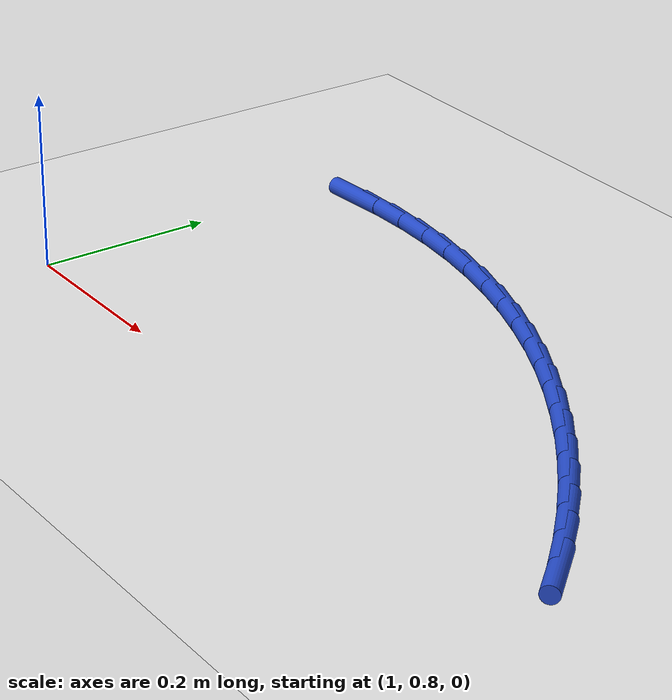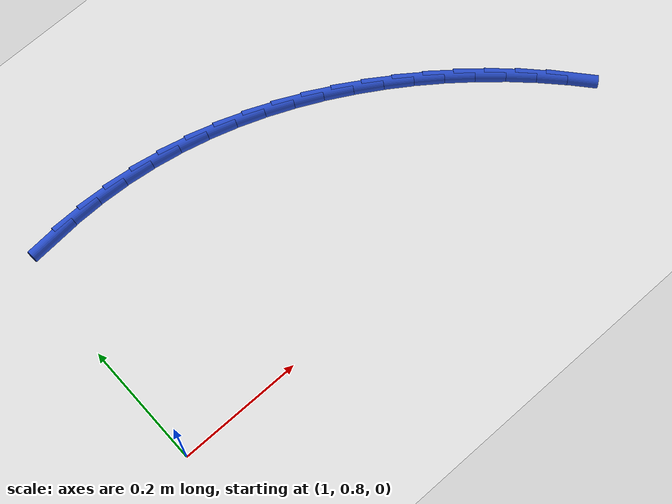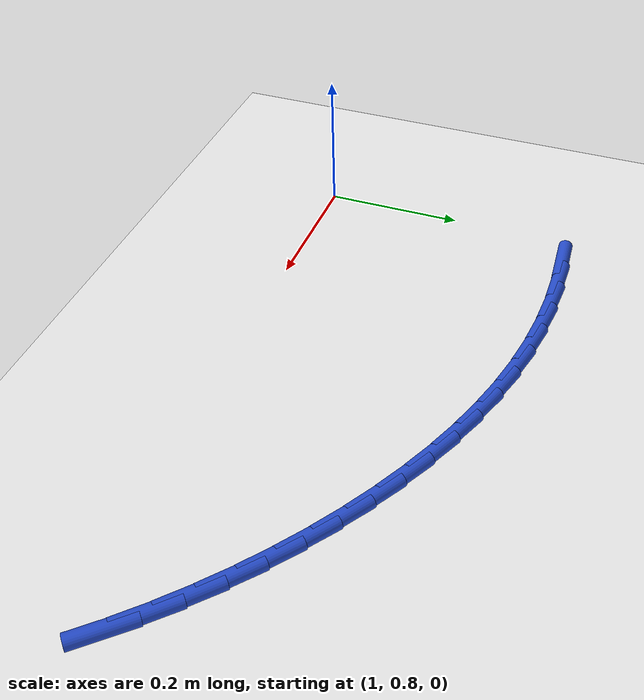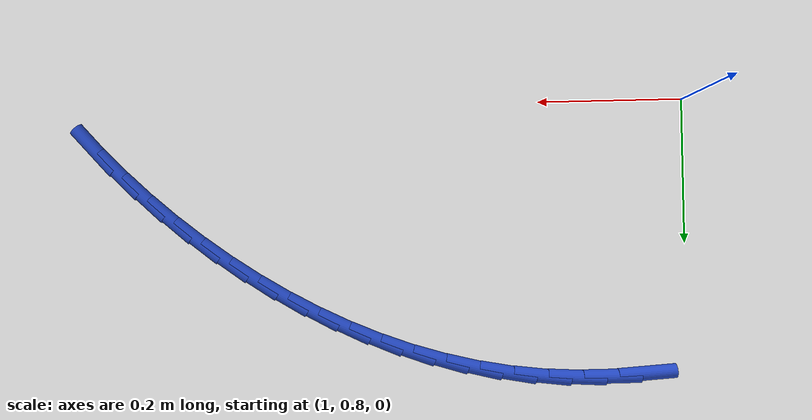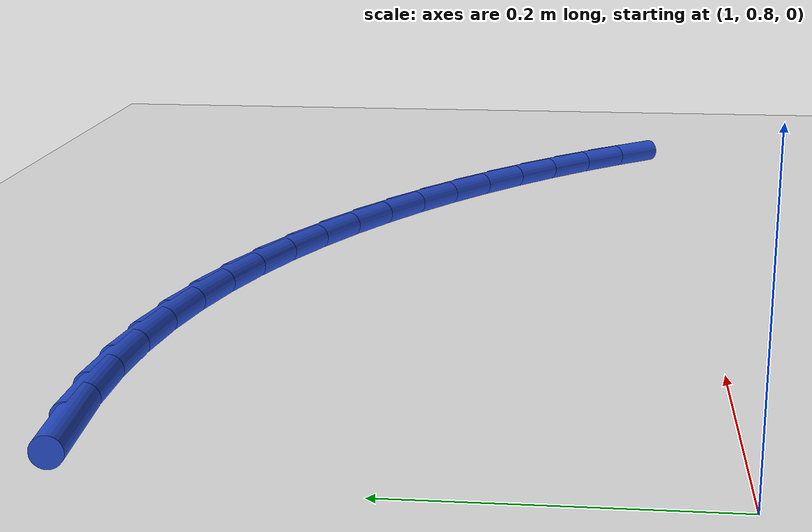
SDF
<sdf version="1.6">
 <world name="default">
  <model name="ground_plane">
   <static>1</static>
   <link name="link">
    <collision name="collision">
     <geometry><plane><normal>0 0 1</normal><size>100 100</size></plane></geometry>
     <surface><friction><ode><mu>100</mu><mu2>50</mu2></ode></friction></surface>
    </collision>
    <visual name="visual">
     <cast_shadows>0</cast_shadows>
     <geometry><plane><normal>0 0 1</normal><size>100 100</size></plane></geometry>
     <material>
      <script><uri>file://media/materials/scripts/gazebo.material</uri><name>Gazebo/WhiteGlow</name></script>
     </material>
    </visual>
   </link>
  </model>
  <model name="line">
   <link name="link_36">
    <pose>1.0584395249842964 1.1781561820800983 0.01 0 1.57 0.06575612400365066</pose>
    <collision name="collision">
     <geometry><cylinder><radius>0.01</radius><length>0.08</length></cylinder></geometry>
    </collision>
    <visual name="visual">
     <material>
      <script><name>Gazebo/Blue</name><uri>file://media/materials/scripts/gazebo.material</uri></script>
     </material>
     <geometry><cylinder><radius>0.01</radius><length>0.08</length></cylinder></geometry>
    </visual>
   </link>
   <link name="link_37">
    <pose>1.1070592692601389 1.1813578438652597 0.01 0 1.57 0.003363680055081965</pose>
    <collision name="collision">
     <geometry><cylinder><radius>0.01</radius><length>0.08</length></cylinder></geometry>
    </collision>
    <visual name="visual">
     <material>
      <script><name>Gazebo/Blue</name><uri>file://media/materials/scripts/gazebo.material</uri></script>
     </material>
     <geometry><cylinder><radius>0.01</radius><length>0.08</length></cylinder></geometry>
    </visual>
   </link>
   <link name="link_38">
    <pose>1.1555762529429277 1.1815210400910927 0.01 0 1.57 -0.05898399173584973</pose>
    <collision name="collision">
     <geometry><cylinder><radius>0.01</radius><length>0.08</length></cylinder></geometry>
    </collision>
    <visual name="visual">
     <material>
      <script><name>Gazebo/Blue</name><uri>file://media/materials/scripts/gazebo.material</uri></script>
     </material>
     <geometry><cylinder><radius>0.01</radius><length>0.08</length></cylinder></geometry>
    </visual>
   </link>
   <link name="link_39">
    <pose>1.2036209507515252 1.178683881005139 0.01 0 1.57 -0.12158685568217643</pose>
    <collision name="collision">
     <geometry><cylinder><radius>0.01</radius><length>0.08</length></cylinder></geometry>
    </collision>
    <visual name="visual">
     <material>
      <script><name>Gazebo/Blue</name><uri>file://media/materials/scripts/gazebo.material</uri></script>
     </material>
     <geometry><cylinder><radius>0.01</radius><length>0.08</length></cylinder></geometry>
    </visual>
   </link>
   <link name="link_40">
    <pose>1.2509033058232113 1.172906470169706 0.01 0 1.57 -0.18293787763764124</pose>
    <collision name="collision">
     <geometry><cylinder><radius>0.01</radius><length>0.08</length></cylinder></geometry>
    </collision>
    <visual name="visual">
     <material>
      <script><name>Gazebo/Blue</name><uri>file://media/materials/scripts/gazebo.material</uri></script>
     </material>
     <geometry><cylinder><radius>0.01</radius><length>0.08</length></cylinder></geometry>
    </visual>
   </link>
   <link name="link_41">
    <pose>1.2973600558809046 1.164311677775767 0.01 0 1.57 -0.2424214555079705</pose>
    <collision name="collision">
     <geometry><cylinder><radius>0.01</radius><length>0.08</length></cylinder></geometry>
    </collision>
    <visual name="visual">
     <material>
      <script><name>Gazebo/Blue</name><uri>file://media/materials/scripts/gazebo.material</uri></script>
     </material>
     <geometry><cylinder><radius>0.01</radius><length>0.08</length></cylinder></geometry>
    </visual>
   </link>
   <link name="link_42">
    <pose>1.3429681334409307 1.1530334981408448 0.01 0 1.57 -0.2997756070706618</pose>
    <collision name="collision">
     <geometry><cylinder><radius>0.01</radius><length>0.08</length></cylinder></geometry>
    </collision>
    <visual name="visual">
     <material>
      <script><name>Gazebo/Blue</name><uri>file://media/materials/scripts/gazebo.material</uri></script>
     </material>
     <geometry><cylinder><radius>0.01</radius><length>0.08</length></cylinder></geometry>
    </visual>
   </link>
   <link name="link_43">
    <pose>1.387704471019614 1.1392059255824643 0.01 0 1.57 -0.35481330731606464</pose>
    <collision name="collision">
     <geometry><cylinder><radius>0.01</radius><length>0.08</length></cylinder></geometry>
    </collision>
    <visual name="visual">
     <material>
      <script><name>Gazebo/Blue</name><uri>file://media/materials/scripts/gazebo.material</uri></script>
     </material>
     <geometry><cylinder><radius>0.01</radius><length>0.08</length></cylinder></geometry>
    </visual>
   </link>
   <link name="link_44">
    <pose>1.431546001133279 1.1229629544181488 0.01 0 1.57 -0.4074186484710152</pose>
    <collision name="collision">
     <geometry><cylinder><radius>0.01</radius><length>0.08</length></cylinder></geometry>
    </collision>
    <visual name="visual">
     <material>
      <script><name>Gazebo/Blue</name><uri>file://media/materials/scripts/gazebo.material</uri></script>
     </material>
     <geometry><cylinder><radius>0.01</radius><length>0.08</length></cylinder></geometry>
    </visual>
   </link>
   <link name="link_45">
    <pose>1.4744696562982509 1.1044385789654223 0.01 0 1.57 -0.4575395148401608</pose>
    <collision name="collision">
     <geometry><cylinder><radius>0.01</radius><length>0.08</length></cylinder></geometry>
    </collision>
    <visual name="visual">
     <material>
      <script><name>Gazebo/Blue</name><uri>file://media/materials/scripts/gazebo.material</uri></script>
     </material>
     <geometry><cylinder><radius>0.01</radius><length>0.08</length></cylinder></geometry>
    </visual>
   </link>
   <link name="link_46">
    <pose>1.5164523690308542 1.0837667935418096 0.01 0 1.57 -0.5051782513102805</pose>
    <collision name="collision">
     <geometry><cylinder><radius>0.01</radius><length>0.08</length></cylinder></geometry>
    </collision>
    <visual name="visual">
     <material>
      <script><name>Gazebo/Blue</name><uri>file://media/materials/scripts/gazebo.material</uri></script>
     </material>
     <geometry><cylinder><radius>0.01</radius><length>0.08</length></cylinder></geometry>
    </visual>
   </link>
   <link name="link_47">
    <pose>1.5574710718474134 1.0610815924648334 0.01 0 1.57 -0.5504797892830455</pose>
    <collision name="collision">
     <geometry><cylinder><radius>0.01</radius><length>0.08</length></cylinder></geometry>
    </collision>
    <visual name="visual">
     <material>
      <script><name>Gazebo/Blue</name><uri>file://media/materials/scripts/gazebo.material</uri></script>
     </material>
     <geometry><cylinder><radius>0.01</radius><length>0.08</length></cylinder></geometry>
    </visual>
   </link>
   <link name="link_48">
    <pose>1.5974990407556275 1.0365138041645316 0.01 0 1.57 -0.594469066658529</pose>
    <collision name="collision">
     <geometry><cylinder><radius>0.01</radius><length>0.08</length></cylinder></geometry>
    </collision>
    <visual name="visual">
     <material>
      <script><name>Gazebo/Blue</name><uri>file://media/materials/scripts/gazebo.material</uri></script>
     </material>
     <geometry><cylinder><radius>0.01</radius><length>0.08</length></cylinder></geometry>
    </visual>
   </link>
   <link name="link_49">
    <pose>1.6364749064457478 1.0101642603751275 0.01 0 1.57 -0.6378038408432082</pose>
    <collision name="collision">
     <geometry><cylinder><radius>0.01</radius><length>0.08</length></cylinder></geometry>
    </collision>
    <visual name="visual">
     <material>
      <script><name>Gazebo/Blue</name><uri>file://media/materials/scripts/gazebo.material</uri></script>
     </material>
     <geometry><cylinder><radius>0.01</radius><length>0.08</length></cylinder></geometry>
    </visual>
   </link>
   <link name="link_50">
    <pose>1.6743181905421396 0.9821172477713983 0.01 0 1.57 -0.6806447606829928</pose>
    <collision name="collision">
     <geometry><cylinder><radius>0.01</radius><length>0.08</length></cylinder></geometry>
    </collision>
    <visual name="visual">
     <material>
      <script><name>Gazebo/Blue</name><uri>file://media/materials/scripts/gazebo.material</uri></script>
     </material>
     <geometry><cylinder><radius>0.01</radius><length>0.08</length></cylinder></geometry>
    </visual>
   </link>
   <link name="link_51">
    <pose>1.7109482146159747 0.9524568798175655 0.01 0 1.57 -0.7231497540762527</pose>
    <collision name="collision">
     <geometry><cylinder><radius>0.01</radius><length>0.08</length></cylinder></geometry>
    </collision>
    <visual name="visual">
     <material>
      <script><name>Gazebo/Blue</name><uri>file://media/materials/scripts/gazebo.material</uri></script>
     </material>
     <geometry><cylinder><radius>0.01</radius><length>0.08</length></cylinder></geometry>
    </visual>
   </link>
   <link name="link_52">
    <pose>1.7462843002384274 0.9212672699778505 0.01 0 1.57 -0.7654787856757127</pose>
    <collision name="collision">
     <geometry><cylinder><radius>0.01</radius><length>0.08</length></cylinder></geometry>
    </collision>
    <visual name="visual">
     <material>
      <script><name>Gazebo/Blue</name><uri>file://media/materials/scripts/gazebo.material</uri></script>
     </material>
     <geometry><cylinder><radius>0.01</radius><length>0.08</length></cylinder></geometry>
    </visual>
   </link>
   <link name="link_53">
    <pose>1.780245768980671 0.8886325317164736 0.01 0 1.57 -0.8077934656024712</pose>
    <collision name="collision">
     <geometry><cylinder><radius>0.01</radius><length>0.08</length></cylinder></geometry>
    </collision>
    <visual name="visual">
     <material>
      <script><name>Gazebo/Blue</name><uri>file://media/materials/scripts/gazebo.material</uri></script>
     </material>
     <geometry><cylinder><radius>0.01</radius><length>0.08</length></cylinder></geometry>
    </visual>
   </link>
   <link name="link_54">
    <pose>1.812751942413878 0.8546367784976552 0.01 0 1.57 -0.8502567870368065</pose>
    <collision name="collision">
     <geometry><cylinder><radius>0.01</radius><length>0.08</length></cylinder></geometry>
    </collision>
    <visual name="visual">
     <material>
      <script><name>Gazebo/Blue</name><uri>file://media/materials/scripts/gazebo.material</uri></script>
     </material>
     <geometry><cylinder><radius>0.01</radius><length>0.08</length></cylinder></geometry>
    </visual>
   </link>
  </model>
 </world>
</sdf>
